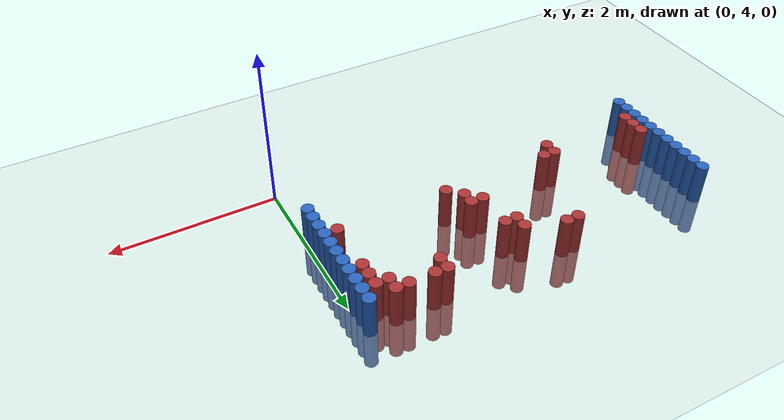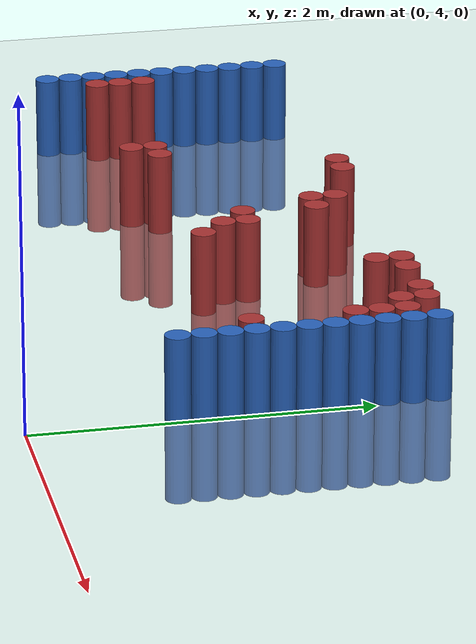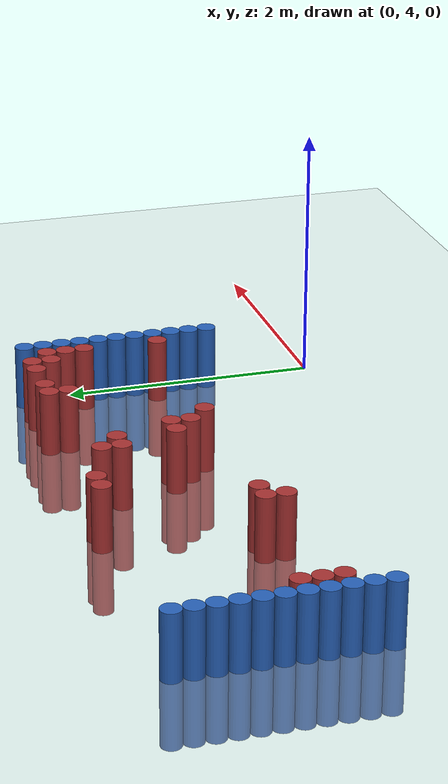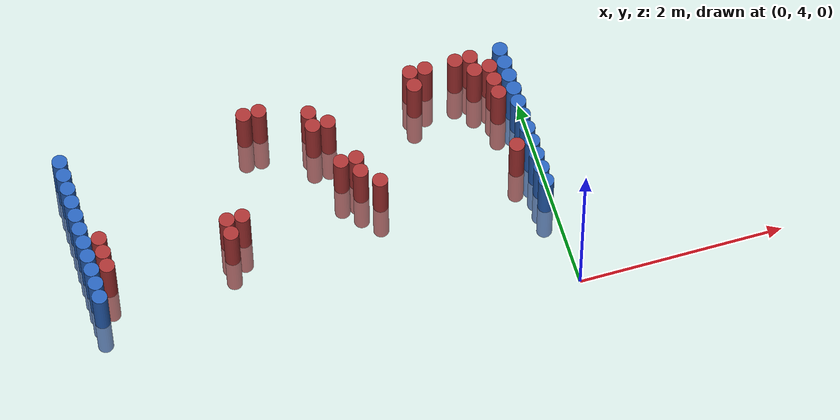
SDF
<sdf version="1.6">
 <world name="default">
  <model name="ground_plane">
   <static>1</static>
   <link name="link">
    <collision name="collision">
     <geometry><plane><normal>0 0 1</normal><size>100 100</size></plane></geometry>
     <surface><friction><ode><mu>100</mu><mu2>50</mu2></ode></friction></surface>
    </collision>
    <visual name="visual">
     <cast_shadows>0</cast_shadows>
     <geometry><plane><normal>0 0 1</normal><size>100 100</size></plane></geometry>
     <material>
      <script><uri>file://media/materials/scripts/gazebo.material</uri><name>Gazebo/Grey</name></script>
     </material>
    </visual>
   </link>
  </model>
  <model name="unit_cylinder_92">
   <static>1</static>
   <pose>-0.075000 4.875000 0.000000 0.000000 0.000000 0.000000</pose>
   <link name="link">
    <inertial>
     <mass>1</mass>
     <inertia><ixx>0.145833</ixx><ixy>0</ixy><ixz>0</ixz><iyy>0.145833</iyy><iyz>0</iyz><izz>0.125</izz></inertia>
    </inertial>
    <collision name="collision">
     <geometry><cylinder><radius>0.075000</radius><length>1</length></cylinder></geometry>
    </collision>
    <visual name="visual">
     <geometry><cylinder><radius>0.075000</radius><length>1</length></cylinder></geometry>
     <material>
      <ambient>0.152000 0.379000 0.720000 1</ambient>
      <diffuse>0.152000 0.379000 0.720000 1</diffuse>
     </material>
     <material>
      <script><name>Gazebo/Grey</name><uri>file://media/materials/scripts/gazebo.material</uri></script>
     </material>
    </visual>
   </link>
  </model>
  <model name="unit_cylinder_93">
   <static>1</static>
   <pose>-4.425000 4.875000 0.000000 0.000000 0.000000 0.000000</pose>
   <link name="link">
    <inertial>
     <mass>1</mass>
     <inertia><ixx>0.145833</ixx><ixy>0</ixy><ixz>0</ixz><iyy>0.145833</iyy><iyz>0</iyz><izz>0.125</izz></inertia>
    </inertial>
    <collision name="collision">
     <geometry><cylinder><radius>0.075000</radius><length>1</length></cylinder></geometry>
    </collision>
    <visual name="visual">
     <geometry><cylinder><radius>0.075000</radius><length>1</length></cylinder></geometry>
     <material>
      <ambient>0.152000 0.379000 0.720000 1</ambient>
      <diffuse>0.152000 0.379000 0.720000 1</diffuse>
     </material>
     <material>
      <script><name>Gazebo/Grey</name><uri>file://media/materials/scripts/gazebo.material</uri></script>
     </material>
    </visual>
   </link>
  </model>
  <model name="unit_cylinder_94">
   <static>1</static>
   <pose>-0.075000 5.025000 0.000000 0.000000 0.000000 0.000000</pose>
   <link name="link">
    <inertial>
     <mass>1</mass>
     <inertia><ixx>0.145833</ixx><ixy>0</ixy><ixz>0</ixz><iyy>0.145833</iyy><iyz>0</iyz><izz>0.125</izz></inertia>
    </inertial>
    <collision name="collision">
     <geometry><cylinder><radius>0.075000</radius><length>1</length></cylinder></geometry>
    </collision>
    <visual name="visual">
     <geometry><cylinder><radius>0.075000</radius><length>1</length></cylinder></geometry>
     <material>
      <ambient>0.152000 0.379000 0.720000 1</ambient>
      <diffuse>0.152000 0.379000 0.720000 1</diffuse>
     </material>
     <material>
      <script><name>Gazebo/Grey</name><uri>file://media/materials/scripts/gazebo.material</uri></script>
     </material>
    </visual>
   </link>
  </model>
  <model name="unit_cylinder_95">
   <static>1</static>
   <pose>-4.425000 5.025000 0.000000 0.000000 0.000000 0.000000</pose>
   <link name="link">
    <inertial>
     <mass>1</mass>
     <inertia><ixx>0.145833</ixx><ixy>0</ixy><ixz>0</ixz><iyy>0.145833</iyy><iyz>0</iyz><izz>0.125</izz></inertia>
    </inertial>
    <collision name="collision">
     <geometry><cylinder><radius>0.075000</radius><length>1</length></cylinder></geometry>
    </collision>
    <visual name="visual">
     <geometry><cylinder><radius>0.075000</radius><length>1</length></cylinder></geometry>
     <material>
      <ambient>0.152000 0.379000 0.720000 1</ambient>
      <diffuse>0.152000 0.379000 0.720000 1</diffuse>
     </material>
     <material>
      <script><name>Gazebo/Grey</name><uri>file://media/materials/scripts/gazebo.material</uri></script>
     </material>
    </visual>
   </link>
  </model>
  <model name="unit_cylinder_96">
   <static>1</static>
   <pose>-4.425000 5.175000 0.000000 0.000000 0.000000 0.000000</pose>
   <link name="link">
    <inertial>
     <mass>1</mass>
     <inertia><ixx>0.145833</ixx><ixy>0</ixy><ixz>0</ixz><iyy>0.145833</iyy><iyz>0</iyz><izz>0.125</izz></inertia>
    </inertial>
    <collision name="collision">
     <geometry><cylinder><radius>0.075000</radius><length>1</length></cylinder></geometry>
    </collision>
    <visual name="visual">
     <geometry><cylinder><radius>0.075000</radius><length>1</length></cylinder></geometry>
     <material>
      <ambient>0.152000 0.379000 0.720000 1</ambient>
      <diffuse>0.152000 0.379000 0.720000 1</diffuse>
     </material>
     <material>
      <script><name>Gazebo/Grey</name><uri>file://media/materials/scripts/gazebo.material</uri></script>
     </material>
    </visual>
   </link>
  </model>
  <model name="unit_cylinder_97">
   <static>1</static>
   <pose>-4.425000 5.325000 0.000000 0.000000 0.000000 0.000000</pose>
   <link name="link">
    <inertial>
     <mass>1</mass>
     <inertia><ixx>0.145833</ixx><ixy>0</ixy><ixz>0</ixz><iyy>0.145833</iyy><iyz>0</iyz><izz>0.125</izz></inertia>
    </inertial>
    <collision name="collision">
     <geometry><cylinder><radius>0.075000</radius><length>1</length></cylinder></geometry>
    </collision>
    <visual name="visual">
     <geometry><cylinder><radius>0.075000</radius><length>1</length></cylinder></geometry>
     <material>
      <ambient>0.152000 0.379000 0.720000 1</ambient>
      <diffuse>0.152000 0.379000 0.720000 1</diffuse>
     </material>
     <material>
      <script><name>Gazebo/Grey</name><uri>file://media/materials/scripts/gazebo.material</uri></script>
     </material>
    </visual>
   </link>
  </model>
  <model name="unit_cylinder_98">
   <static>1</static>
   <pose>-4.425000 5.475000 0.000000 0.000000 0.000000 0.000000</pose>
   <link name="link">
    <inertial>
     <mass>1</mass>
     <inertia><ixx>0.145833</ixx><ixy>0</ixy><ixz>0</ixz><iyy>0.145833</iyy><iyz>0</iyz><izz>0.125</izz></inertia>
    </inertial>
    <collision name="collision">
     <geometry><cylinder><radius>0.075000</radius><length>1</length></cylinder></geometry>
    </collision>
    <visual name="visual">
     <geometry><cylinder><radius>0.075000</radius><length>1</length></cylinder></geometry>
     <material>
      <ambient>0.152000 0.379000 0.720000 1</ambient>
      <diffuse>0.152000 0.379000 0.720000 1</diffuse>
     </material>
     <material>
      <script><name>Gazebo/Grey</name><uri>file://media/materials/scripts/gazebo.material</uri></script>
     </material>
    </visual>
   </link>
  </model>
  <model name="unit_cylinder_99">
   <static>1</static>
   <pose>-4.425000 5.625000 0.000000 0.000000 0.000000 0.000000</pose>
   <link name="link">
    <inertial>
     <mass>1</mass>
     <inertia><ixx>0.145833</ixx><ixy>0</ixy><ixz>0</ixz><iyy>0.145833</iyy><iyz>0</iyz><izz>0.125</izz></inertia>
    </inertial>
    <collision name="collision">
     <geometry><cylinder><radius>0.075000</radius><length>1</length></cylinder></geometry>
    </collision>
    <visual name="visual">
     <geometry><cylinder><radius>0.075000</radius><length>1</length></cylinder></geometry>
     <material>
      <ambient>0.152000 0.379000 0.720000 1</ambient>
      <diffuse>0.152000 0.379000 0.720000 1</diffuse>
     </material>
     <material>
      <script><name>Gazebo/Grey</name><uri>file://media/materials/scripts/gazebo.material</uri></script>
     </material>
    </visual>
   </link>
  </model>
  <model name="unit_cylinder_100">
   <static>1</static>
   <pose>-4.425000 5.775000 0.000000 0.000000 0.000000 0.000000</pose>
   <link name="link">
    <inertial>
     <mass>1</mass>
     <inertia><ixx>0.145833</ixx><ixy>0</ixy><ixz>0</ixz><iyy>0.145833</iyy><iyz>0</iyz><izz>0.125</izz></inertia>
    </inertial>
    <collision name="collision">
     <geometry><cylinder><radius>0.075000</radius><length>1</length></cylinder></geometry>
    </collision>
    <visual name="visual">
     <geometry><cylinder><radius>0.075000</radius><length>1</length></cylinder></geometry>
     <material>
      <ambient>0.152000 0.379000 0.720000 1</ambient>
      <diffuse>0.152000 0.379000 0.720000 1</diffuse>
     </material>
     <material>
      <script><name>Gazebo/Grey</name><uri>file://media/materials/scripts/gazebo.material</uri></script>
     </material>
    </visual>
   </link>
  </model>
  <model name="unit_cylinder_101">
   <static>1</static>
   <pose>-4.425000 5.925000 0.000000 0.000000 0.000000 0.000000</pose>
   <link name="link">
    <inertial>
     <mass>1</mass>
     <inertia><ixx>0.145833</ixx><ixy>0</ixy><ixz>0</ixz><iyy>0.145833</iyy><iyz>0</iyz><izz>0.125</izz></inertia>
    </inertial>
    <collision name="collision">
     <geometry><cylinder><radius>0.075000</radius><length>1</length></cylinder></geometry>
    </collision>
    <visual name="visual">
     <geometry><cylinder><radius>0.075000</radius><length>1</length></cylinder></geometry>
     <material>
      <ambient>0.152000 0.379000 0.720000 1</ambient>
      <diffuse>0.152000 0.379000 0.720000 1</diffuse>
     </material>
     <material>
      <script><name>Gazebo/Grey</name><uri>file://media/materials/scripts/gazebo.material</uri></script>
     </material>
    </visual>
   </link>
  </model>
  <model name="unit_cylinder_102">
   <static>1</static>
   <pose>-4.425000 6.075000 0.000000 0.000000 0.000000 0.000000</pose>
   <link name="link">
    <inertial>
     <mass>1</mass>
     <inertia><ixx>0.145833</ixx><ixy>0</ixy><ixz>0</ixz><iyy>0.145833</iyy><iyz>0</iyz><izz>0.125</izz></inertia>
    </inertial>
    <collision name="collision">
     <geometry><cylinder><radius>0.075000</radius><length>1</length></cylinder></geometry>
    </collision>
    <visual name="visual">
     <geometry><cylinder><radius>0.075000</radius><length>1</length></cylinder></geometry>
     <material>
      <ambient>0.152000 0.379000 0.720000 1</ambient>
      <diffuse>0.152000 0.379000 0.720000 1</diffuse>
     </material>
     <material>
      <script><name>Gazebo/Grey</name><uri>file://media/materials/scripts/gazebo.material</uri></script>
     </material>
    </visual>
   </link>
  </model>
  <model name="unit_cylinder_103">
   <static>1</static>
   <pose>-4.425000 6.225000 0.000000 0.000000 0.000000 0.000000</pose>
   <link name="link">
    <inertial>
     <mass>1</mass>
     <inertia><ixx>0.145833</ixx><ixy>0</ixy><ixz>0</ixz><iyy>0.145833</iyy><iyz>0</iyz><izz>0.125</izz></inertia>
    </inertial>
    <collision name="collision">
     <geometry><cylinder><radius>0.075000</radius><length>1</length></cylinder></geometry>
    </collision>
    <visual name="visual">
     <geometry><cylinder><radius>0.075000</radius><length>1</length></cylinder></geometry>
     <material>
      <ambient>0.152000 0.379000 0.720000 1</ambient>
      <diffuse>0.152000 0.379000 0.720000 1</diffuse>
     </material>
     <material>
      <script><name>Gazebo/Grey</name><uri>file://media/materials/scripts/gazebo.material</uri></script>
     </material>
    </visual>
   </link>
  </model>
  <model name="unit_cylinder_104">
   <static>1</static>
   <pose>-4.425000 6.375000 0.000000 0.000000 0.000000 0.000000</pose>
   <link name="link">
    <inertial>
     <mass>1</mass>
     <inertia><ixx>0.145833</ixx><ixy>0</ixy><ixz>0</ixz><iyy>0.145833</iyy><iyz>0</iyz><izz>0.125</izz></inertia>
    </inertial>
    <collision name="collision">
     <geometry><cylinder><radius>0.075000</radius><length>1</length></cylinder></geometry>
    </collision>
    <visual name="visual">
     <geometry><cylinder><radius>0.075000</radius><length>1</length></cylinder></geometry>
     <material>
      <ambient>0.152000 0.379000 0.720000 1</ambient>
      <diffuse>0.152000 0.379000 0.720000 1</diffuse>
     </material>
     <material>
      <script><name>Gazebo/Grey</name><uri>file://media/materials/scripts/gazebo.material</uri></script>
     </material>
    </visual>
   </link>
  </model>
  <model name="unit_cylinder_126">
   <static>1</static>
   <pose>-4.275000 5.175000 0.000000 0.000000 0.000000 0.000000</pose>
   <link name="link">
    <inertial>
     <mass>1</mass>
     <inertia><ixx>0.145833</ixx><ixy>0</ixy><ixz>0</ixz><iyy>0.145833</iyy><iyz>0</iyz><izz>0.125</izz></inertia>
    </inertial>
    <collision name="collision">
     <geometry><cylinder><radius>0.075000</radius><length>1</length></cylinder></geometry>
    </collision>
    <visual name="visual">
     <geometry><cylinder><radius>0.075000</radius><length>1</length></cylinder></geometry>
     <material>
      <ambient>0.648000 0.192000 0.192000 1</ambient>
      <diffuse>0.648000 0.192000 0.192000 1</diffuse>
     </material>
     <material>
      <script><name>Gazebo/Grey</name><uri>file://media/materials/scripts/gazebo.material</uri></script>
     </material>
    </visual>
   </link>
  </model>
  <model name="unit_cylinder_127">
   <static>1</static>
   <pose>-4.275000 5.325000 0.000000 0.000000 0.000000 0.000000</pose>
   <link name="link">
    <inertial>
     <mass>1</mass>
     <inertia><ixx>0.145833</ixx><ixy>0</ixy><ixz>0</ixz><iyy>0.145833</iyy><iyz>0</iyz><izz>0.125</izz></inertia>
    </inertial>
    <collision name="collision">
     <geometry><cylinder><radius>0.075000</radius><length>1</length></cylinder></geometry>
    </collision>
    <visual name="visual">
     <geometry><cylinder><radius>0.075000</radius><length>1</length></cylinder></geometry>
     <material>
      <ambient>0.648000 0.192000 0.192000 1</ambient>
      <diffuse>0.648000 0.192000 0.192000 1</diffuse>
     </material>
     <material>
      <script><name>Gazebo/Grey</name><uri>file://media/materials/scripts/gazebo.material</uri></script>
     </material>
    </visual>
   </link>
  </model>
  <model name="unit_cylinder_128">
   <static>1</static>
   <pose>-4.275000 5.475000 0.000000 0.000000 0.000000 0.000000</pose>
   <link name="link">
    <inertial>
     <mass>1</mass>
     <inertia><ixx>0.145833</ixx><ixy>0</ixy><ixz>0</ixz><iyy>0.145833</iyy><iyz>0</iyz><izz>0.125</izz></inertia>
    </inertial>
    <collision name="collision">
     <geometry><cylinder><radius>0.075000</radius><length>1</length></cylinder></geometry>
    </collision>
    <visual name="visual">
     <geometry><cylinder><radius>0.075000</radius><length>1</length></cylinder></geometry>
     <material>
      <ambient>0.648000 0.192000 0.192000 1</ambient>
      <diffuse>0.648000 0.192000 0.192000 1</diffuse>
     </material>
     <material>
      <script><name>Gazebo/Grey</name><uri>file://media/materials/scripts/gazebo.material</uri></script>
     </material>
    </visual>
   </link>
  </model>
  <model name="unit_cylinder_148">
   <static>1</static>
   <pose>-3.075000 5.175000 0.000000 0.000000 0.000000 0.000000</pose>
   <link name="link">
    <inertial>
     <mass>1</mass>
     <inertia><ixx>0.145833</ixx><ixy>0</ixy><ixz>0</ixz><iyy>0.145833</iyy><iyz>0</iyz><izz>0.125</izz></inertia>
    </inertial>
    <collision name="collision">
     <geometry><cylinder><radius>0.075000</radius><length>1</length></cylinder></geometry>
    </collision>
    <visual name="visual">
     <geometry><cylinder><radius>0.075000</radius><length>1</length></cylinder></geometry>
     <material>
      <ambient>0.648000 0.192000 0.192000 1</ambient>
      <diffuse>0.648000 0.192000 0.192000 1</diffuse>
     </material>
     <material>
      <script><name>Gazebo/Grey</name><uri>file://media/materials/scripts/gazebo.material</uri></script>
     </material>
    </visual>
   </link>
  </model>
  <model name="unit_cylinder_149">
   <static>1</static>
   <pose>-3.075000 5.325000 0.000000 0.000000 0.000000 0.000000</pose>
   <link name="link">
    <inertial>
     <mass>1</mass>
     <inertia><ixx>0.145833</ixx><ixy>0</ixy><ixz>0</ixz><iyy>0.145833</iyy><iyz>0</iyz><izz>0.125</izz></inertia>
    </inertial>
    <collision name="collision">
     <geometry><cylinder><radius>0.075000</radius><length>1</length></cylinder></geometry>
    </collision>
    <visual name="visual">
     <geometry><cylinder><radius>0.075000</radius><length>1</length></cylinder></geometry>
     <material>
      <ambient>0.648000 0.192000 0.192000 1</ambient>
      <diffuse>0.648000 0.192000 0.192000 1</diffuse>
     </material>
     <material>
      <script><name>Gazebo/Grey</name><uri>file://media/materials/scripts/gazebo.material</uri></script>
     </material>
    </visual>
   </link>
  </model>
  <model name="unit_cylinder_153">
   <static>1</static>
   <pose>-2.925000 5.325000 0.000000 0.000000 0.000000 0.000000</pose>
   <link name="link">
    <inertial>
     <mass>1</mass>
     <inertia><ixx>0.145833</ixx><ixy>0</ixy><ixz>0</ixz><iyy>0.145833</iyy><iyz>0</iyz><izz>0.125</izz></inertia>
    </inertial>
    <collision name="collision">
     <geometry><cylinder><radius>0.075000</radius><length>1</length></cylinder></geometry>
    </collision>
    <visual name="visual">
     <geometry><cylinder><radius>0.075000</radius><length>1</length></cylinder></geometry>
     <material>
      <ambient>0.648000 0.192000 0.192000 1</ambient>
      <diffuse>0.648000 0.192000 0.192000 1</diffuse>
     </material>
     <material>
      <script><name>Gazebo/Grey</name><uri>file://media/materials/scripts/gazebo.material</uri></script>
     </material>
    </visual>
   </link>
  </model>
  <model name="unit_cylinder_155">
   <static>1</static>
   <pose>-2.625000 6.375000 0.000000 0.000000 0.000000 0.000000</pose>
   <link name="link">
    <inertial>
     <mass>1</mass>
     <inertia><ixx>0.145833</ixx><ixy>0</ixy><ixz>0</ixz><iyy>0.145833</iyy><iyz>0</iyz><izz>0.125</izz></inertia>
    </inertial>
    <collision name="collision">
     <geometry><cylinder><radius>0.075000</radius><length>1</length></cylinder></geometry>
    </collision>
    <visual name="visual">
     <geometry><cylinder><radius>0.075000</radius><length>1</length></cylinder></geometry>
     <material>
      <ambient>0.648000 0.192000 0.192000 1</ambient>
      <diffuse>0.648000 0.192000 0.192000 1</diffuse>
     </material>
     <material>
      <script><name>Gazebo/Grey</name><uri>file://media/materials/scripts/gazebo.material</uri></script>
     </material>
    </visual>
   </link>
  </model>
  <model name="unit_cylinder_157">
   <static>1</static>
   <pose>-2.475000 6.375000 0.000000 0.000000 0.000000 0.000000</pose>
   <link name="link">
    <inertial>
     <mass>1</mass>
     <inertia><ixx>0.145833</ixx><ixy>0</ixy><ixz>0</ixz><iyy>0.145833</iyy><iyz>0</iyz><izz>0.125</izz></inertia>
    </inertial>
    <collision name="collision">
     <geometry><cylinder><radius>0.075000</radius><length>1</length></cylinder></geometry>
    </collision>
    <visual name="visual">
     <geometry><cylinder><radius>0.075000</radius><length>1</length></cylinder></geometry>
     <material>
      <ambient>0.648000 0.192000 0.192000 1</ambient>
      <diffuse>0.648000 0.192000 0.192000 1</diffuse>
     </material>
     <material>
      <script><name>Gazebo/Grey</name><uri>file://media/materials/scripts/gazebo.material</uri></script>
     </material>
    </visual>
   </link>
  </model>
  <model name="unit_cylinder_161">
   <static>1</static>
   <pose>-2.025000 6.075000 0.000000 0.000000 0.000000 0.000000</pose>
   <link name="link">
    <inertial>
     <mass>1</mass>
     <inertia><ixx>0.145833</ixx><ixy>0</ixy><ixz>0</ixz><iyy>0.145833</iyy><iyz>0</iyz><izz>0.125</izz></inertia>
    </inertial>
    <collision name="collision">
     <geometry><cylinder><radius>0.075000</radius><length>1</length></cylinder></geometry>
    </collision>
    <visual name="visual">
     <geometry><cylinder><radius>0.075000</radius><length>1</length></cylinder></geometry>
     <material>
      <ambient>0.648000 0.192000 0.192000 1</ambient>
      <diffuse>0.648000 0.192000 0.192000 1</diffuse>
     </material>
     <material>
      <script><name>Gazebo/Grey</name><uri>file://media/materials/scripts/gazebo.material</uri></script>
     </material>
    </visual>
   </link>
  </model>
  <model name="unit_cylinder_162">
   <static>1</static>
   <pose>-2.025000 6.225000 0.000000 0.000000 0.000000 0.000000</pose>
   <link name="link">
    <inertial>
     <mass>1</mass>
     <inertia><ixx>0.145833</ixx><ixy>0</ixy><ixz>0</ixz><iyy>0.145833</iyy><iyz>0</iyz><izz>0.125</izz></inertia>
    </inertial>
    <collision name="collision">
     <geometry><cylinder><radius>0.075000</radius><length>1</length></cylinder></geometry>
    </collision>
    <visual name="visual">
     <geometry><cylinder><radius>0.075000</radius><length>1</length></cylinder></geometry>
     <material>
      <ambient>0.648000 0.192000 0.192000 1</ambient>
      <diffuse>0.648000 0.192000 0.192000 1</diffuse>
     </material>
     <material>
      <script><name>Gazebo/Grey</name><uri>file://media/materials/scripts/gazebo.material</uri></script>
     </material>
    </visual>
   </link>
  </model>
  <model name="unit_cylinder_163">
   <static>1</static>
   <pose>-1.875000 5.625000 0.000000 0.000000 0.000000 0.000000</pose>
   <link name="link">
    <inertial>
     <mass>1</mass>
     <inertia><ixx>0.145833</ixx><ixy>0</ixy><ixz>0</ixz><iyy>0.145833</iyy><iyz>0</iyz><izz>0.125</izz></inertia>
    </inertial>
    <collision name="collision">
     <geometry><cylinder><radius>0.075000</radius><length>1</length></cylinder></geometry>
    </collision>
    <visual name="visual">
     <geometry><cylinder><radius>0.075000</radius><length>1</length></cylinder></geometry>
     <material>
      <ambient>0.648000 0.192000 0.192000 1</ambient>
      <diffuse>0.648000 0.192000 0.192000 1</diffuse>
     </material>
     <material>
      <script><name>Gazebo/Grey</name><uri>file://media/materials/scripts/gazebo.material</uri></script>
     </material>
    </visual>
   </link>
  </model>
  <model name="unit_cylinder_164">
   <static>1</static>
   <pose>-1.875000 6.075000 0.000000 0.000000 0.000000 0.000000</pose>
   <link name="link">
    <inertial>
     <mass>1</mass>
     <inertia><ixx>0.145833</ixx><ixy>0</ixy><ixz>0</ixz><iyy>0.145833</iyy><iyz>0</iyz><izz>0.125</izz></inertia>
    </inertial>
    <collision name="collision">
     <geometry><cylinder><radius>0.075000</radius><length>1</length></cylinder></geometry>
    </collision>
    <visual name="visual">
     <geometry><cylinder><radius>0.075000</radius><length>1</length></cylinder></geometry>
     <material>
      <ambient>0.648000 0.192000 0.192000 1</ambient>
      <diffuse>0.648000 0.192000 0.192000 1</diffuse>
     </material>
     <material>
      <script><name>Gazebo/Grey</name><uri>file://media/materials/scripts/gazebo.material</uri></script>
     </material>
    </visual>
   </link>
  </model>
  <model name="unit_cylinder_165">
   <static>1</static>
   <pose>-1.725000 5.475000 0.000000 0.000000 0.000000 0.000000</pose>
   <link name="link">
    <inertial>
     <mass>1</mass>
     <inertia><ixx>0.145833</ixx><ixy>0</ixy><ixz>0</ixz><iyy>0.145833</iyy><iyz>0</iyz><izz>0.125</izz></inertia>
    </inertial>
    <collision name="collision">
     <geometry><cylinder><radius>0.075000</radius><length>1</length></cylinder></geometry>
    </collision>
    <visual name="visual">
     <geometry><cylinder><radius>0.075000</radius><length>1</length></cylinder></geometry>
     <material>
      <ambient>0.648000 0.192000 0.192000 1</ambient>
      <diffuse>0.648000 0.192000 0.192000 1</diffuse>
     </material>
     <material>
      <script><name>Gazebo/Grey</name><uri>file://media/materials/scripts/gazebo.material</uri></script>
     </material>
    </visual>
   </link>
  </model>
  <model name="unit_cylinder_166">
   <static>1</static>
   <pose>-1.725000 5.625000 0.000000 0.000000 0.000000 0.000000</pose>
   <link name="link">
    <inertial>
     <mass>1</mass>
     <inertia><ixx>0.145833</ixx><ixy>0</ixy><ixz>0</ixz><iyy>0.145833</iyy><iyz>0</iyz><izz>0.125</izz></inertia>
    </inertial>
    <collision name="collision">
     <geometry><cylinder><radius>0.075000</radius><length>1</length></cylinder></geometry>
    </collision>
    <visual name="visual">
     <geometry><cylinder><radius>0.075000</radius><length>1</length></cylinder></geometry>
     <material>
      <ambient>0.648000 0.192000 0.192000 1</ambient>
      <diffuse>0.648000 0.192000 0.192000 1</diffuse>
     </material>
     <material>
      <script><name>Gazebo/Grey</name><uri>file://media/materials/scripts/gazebo.material</uri></script>
     </material>
    </visual>
   </link>
  </model>
  <model name="unit_cylinder_169">
   <static>1</static>
   <pose>-1.575000 5.325000 0.000000 0.000000 0.000000 0.000000</pose>
   <link name="link">
    <inertial>
     <mass>1</mass>
     <inertia><ixx>0.145833</ixx><ixy>0</ixy><ixz>0</ixz><iyy>0.145833</iyy><iyz>0</iyz><izz>0.125</izz></inertia>
    </inertial>
    <collision name="collision">
     <geometry><cylinder><radius>0.075000</radius><length>1</length></cylinder></geometry>
    </collision>
    <visual name="visual">
     <geometry><cylinder><radius>0.075000</radius><length>1</length></cylinder></geometry>
     <material>
      <ambient>0.648000 0.192000 0.192000 1</ambient>
      <diffuse>0.648000 0.192000 0.192000 1</diffuse>
     </material>
     <material>
      <script><name>Gazebo/Grey</name><uri>file://media/materials/scripts/gazebo.material</uri></script>
     </material>
    </visual>
   </link>
  </model>
  <model name="unit_cylinder_173">
   <static>1</static>
   <pose>-0.975000 6.225000 0.000000 0.000000 0.000000 0.000000</pose>
   <link name="link">
    <inertial>
     <mass>1</mass>
     <inertia><ixx>0.145833</ixx><ixy>0</ixy><ixz>0</ixz><iyy>0.145833</iyy><iyz>0</iyz><izz>0.125</izz></inertia>
    </inertial>
    <collision name="collision">
     <geometry><cylinder><radius>0.075000</radius><length>1</length></cylinder></geometry>
    </collision>
    <visual name="visual">
     <geometry><cylinder><radius>0.075000</radius><length>1</length></cylinder></geometry>
     <material>
      <ambient>0.648000 0.192000 0.192000 1</ambient>
      <diffuse>0.648000 0.192000 0.192000 1</diffuse>
     </material>
     <material>
      <script><name>Gazebo/Grey</name><uri>file://media/materials/scripts/gazebo.material</uri></script>
     </material>
    </visual>
   </link>
  </model>
  <model name="unit_cylinder_174">
   <static>1</static>
   <pose>-0.975000 6.375000 0.000000 0.000000 0.000000 0.000000</pose>
   <link name="link">
    <inertial>
     <mass>1</mass>
     <inertia><ixx>0.145833</ixx><ixy>0</ixy><ixz>0</ixz><iyy>0.145833</iyy><iyz>0</iyz><izz>0.125</izz></inertia>
    </inertial>
    <collision name="collision">
     <geometry><cylinder><radius>0.075000</radius><length>1</length></cylinder></geometry>
    </collision>
    <visual name="visual">
     <geometry><cylinder><radius>0.075000</radius><length>1</length></cylinder></geometry>
     <material>
      <ambient>0.648000 0.192000 0.192000 1</ambient>
      <diffuse>0.648000 0.192000 0.192000 1</diffuse>
     </material>
     <material>
      <script><name>Gazebo/Grey</name><uri>file://media/materials/scripts/gazebo.material</uri></script>
     </material>
    </visual>
   </link>
  </model>
  <model name="unit_cylinder_178">
   <static>1</static>
   <pose>-0.825000 6.375000 0.000000 0.000000 0.000000 0.000000</pose>
   <link name="link">
    <inertial>
     <mass>1</mass>
     <inertia><ixx>0.145833</ixx><ixy>0</ixy><ixz>0</ixz><iyy>0.145833</iyy><iyz>0</iyz><izz>0.125</izz></inertia>
    </inertial>
    <collision name="collision">
     <geometry><cylinder><radius>0.075000</radius><length>1</length></cylinder></geometry>
    </collision>
    <visual name="visual">
     <geometry><cylinder><radius>0.075000</radius><length>1</length></cylinder></geometry>
     <material>
      <ambient>0.648000 0.192000 0.192000 1</ambient>
      <diffuse>0.648000 0.192000 0.192000 1</diffuse>
     </material>
     <material>
      <script><name>Gazebo/Grey</name><uri>file://media/materials/scripts/gazebo.material</uri></script>
     </material>
    </visual>
   </link>
  </model>
  <model name="unit_cylinder_181">
   <static>1</static>
   <pose>-0.525000 6.375000 0.000000 0.000000 0.000000 0.000000</pose>
   <link name="link">
    <inertial>
     <mass>1</mass>
     <inertia><ixx>0.145833</ixx><ixy>0</ixy><ixz>0</ixz><iyy>0.145833</iyy><iyz>0</iyz><izz>0.125</izz></inertia>
    </inertial>
    <collision name="collision">
     <geometry><cylinder><radius>0.075000</radius><length>1</length></cylinder></geometry>
    </collision>
    <visual name="visual">
     <geometry><cylinder><radius>0.075000</radius><length>1</length></cylinder></geometry>
     <material>
      <ambient>0.648000 0.192000 0.192000 1</ambient>
      <diffuse>0.648000 0.192000 0.192000 1</diffuse>
     </material>
     <material>
      <script><name>Gazebo/Grey</name><uri>file://media/materials/scripts/gazebo.material</uri></script>
     </material>
    </visual>
   </link>
  </model>
  <model name="unit_cylinder_183">
   <static>1</static>
   <pose>-0.375000 6.225000 0.000000 0.000000 0.000000 0.000000</pose>
   <link name="link">
    <inertial>
     <mass>1</mass>
     <inertia><ixx>0.145833</ixx><ixy>0</ixy><ixz>0</ixz><iyy>0.145833</iyy><iyz>0</iyz><izz>0.125</izz></inertia>
    </inertial>
    <collision name="collision">
     <geometry><cylinder><radius>0.075000</radius><length>1</length></cylinder></geometry>
    </collision>
    <visual name="visual">
     <geometry><cylinder><radius>0.075000</radius><length>1</length></cylinder></geometry>
     <material>
      <ambient>0.648000 0.192000 0.192000 1</ambient>
      <diffuse>0.648000 0.192000 0.192000 1</diffuse>
     </material>
     <material>
      <script><name>Gazebo/Grey</name><uri>file://media/materials/scripts/gazebo.material</uri></script>
     </material>
    </visual>
   </link>
  </model>
  <model name="unit_cylinder_184">
   <static>1</static>
   <pose>-0.375000 6.375000 0.000000 0.000000 0.000000 0.000000</pose>
   <link name="link">
    <inertial>
     <mass>1</mass>
     <inertia><ixx>0.145833</ixx><ixy>0</ixy><ixz>0</ixz><iyy>0.145833</iyy><iyz>0</iyz><izz>0.125</izz></inertia>
    </inertial>
    <collision name="collision">
     <geometry><cylinder><radius>0.075000</radius><length>1</length></cylinder></geometry>
    </collision>
    <visual name="visual">
     <geometry><cylinder><radius>0.075000</radius><length>1</length></cylinder></geometry>
     <material>
      <ambient>0.648000 0.192000 0.192000 1</ambient>
      <diffuse>0.648000 0.192000 0.192000 1</diffuse>
     </material>
     <material>
      <script><name>Gazebo/Grey</name><uri>file://media/materials/scripts/gazebo.material</uri></script>
     </material>
    </visual>
   </link>
  </model>
  <model name="unit_cylinder_188">
   <static>1</static>
   <pose>-0.225000 5.325000 0.000000 0.000000 0.000000 0.000000</pose>
   <link name="link">
    <inertial>
     <mass>1</mass>
     <inertia><ixx>0.145833</ixx><ixy>0</ixy><ixz>0</ixz><iyy>0.145833</iyy><iyz>0</iyz><izz>0.125</izz></inertia>
    </inertial>
    <collision name="collision">
     <geometry><cylinder><radius>0.075000</radius><length>1</length></cylinder></geometry>
    </collision>
    <visual name="visual">
     <geometry><cylinder><radius>0.075000</radius><length>1</length></cylinder></geometry>
     <material>
      <ambient>0.648000 0.192000 0.192000 1</ambient>
      <diffuse>0.648000 0.192000 0.192000 1</diffuse>
     </material>
     <material>
      <script><name>Gazebo/Grey</name><uri>file://media/materials/scripts/gazebo.material</uri></script>
     </material>
    </visual>
   </link>
  </model>
  <model name="unit_cylinder_189">
   <static>1</static>
   <pose>-0.225000 5.925000 0.000000 0.000000 0.000000 0.000000</pose>
   <link name="link">
    <inertial>
     <mass>1</mass>
     <inertia><ixx>0.145833</ixx><ixy>0</ixy><ixz>0</ixz><iyy>0.145833</iyy><iyz>0</iyz><izz>0.125</izz></inertia>
    </inertial>
    <collision name="collision">
     <geometry><cylinder><radius>0.075000</radius><length>1</length></cylinder></geometry>
    </collision>
    <visual name="visual">
     <geometry><cylinder><radius>0.075000</radius><length>1</length></cylinder></geometry>
     <material>
      <ambient>0.648000 0.192000 0.192000 1</ambient>
      <diffuse>0.648000 0.192000 0.192000 1</diffuse>
     </material>
     <material>
      <script><name>Gazebo/Grey</name><uri>file://media/materials/scripts/gazebo.material</uri></script>
     </material>
    </visual>
   </link>
  </model>
  <model name="unit_cylinder_190">
   <static>1</static>
   <pose>-0.225000 6.075000 0.000000 0.000000 0.000000 0.000000</pose>
   <link name="link">
    <inertial>
     <mass>1</mass>
     <inertia><ixx>0.145833</ixx><ixy>0</ixy><ixz>0</ixz><iyy>0.145833</iyy><iyz>0</iyz><izz>0.125</izz></inertia>
    </inertial>
    <collision name="collision">
     <geometry><cylinder><radius>0.075000</radius><length>1</length></cylinder></geometry>
    </collision>
    <visual name="visual">
     <geometry><cylinder><radius>0.075000</radius><length>1</length></cylinder></geometry>
     <material>
      <ambient>0.648000 0.192000 0.192000 1</ambient>
      <diffuse>0.648000 0.192000 0.192000 1</diffuse>
     </material>
     <material>
      <script><name>Gazebo/Grey</name><uri>file://media/materials/scripts/gazebo.material</uri></script>
     </material>
    </visual>
   </link>
  </model>
  <model name="unit_cylinder_191">
   <static>1</static>
   <pose>-0.225000 6.225000 0.000000 0.000000 0.000000 0.000000</pose>
   <link name="link">
    <inertial>
     <mass>1</mass>
     <inertia><ixx>0.145833</ixx><ixy>0</ixy><ixz>0</ixz><iyy>0.145833</iyy><iyz>0</iyz><izz>0.125</izz></inertia>
    </inertial>
    <collision name="collision">
     <geometry><cylinder><radius>0.075000</radius><length>1</length></cylinder></geometry>
    </collision>
    <visual name="visual">
     <geometry><cylinder><radius>0.075000</radius><length>1</length></cylinder></geometry>
     <material>
      <ambient>0.648000 0.192000 0.192000 1</ambient>
      <diffuse>0.648000 0.192000 0.192000 1</diffuse>
     </material>
     <material>
      <script><name>Gazebo/Grey</name><uri>file://media/materials/scripts/gazebo.material</uri></script>
     </material>
    </visual>
   </link>
  </model>
  <model name="unit_cylinder_202">
   <static>1</static>
   <pose>-0.075000 5.175000 0.000000 0.000000 0.000000 0.000000</pose>
   <link name="link">
    <inertial>
     <mass>1</mass>
     <inertia><ixx>0.145833</ixx><ixy>0</ixy><ixz>0</ixz><iyy>0.145833</iyy><iyz>0</iyz><izz>0.125</izz></inertia>
    </inertial>
    <collision name="collision">
     <geometry><cylinder><radius>0.075000</radius><length>1</length></cylinder></geometry>
    </collision>
    <visual name="visual">
     <geometry><cylinder><radius>0.075000</radius><length>1</length></cylinder></geometry>
     <material>
      <ambient>0.152000 0.379000 0.720000 1</ambient>
      <diffuse>0.152000 0.379000 0.720000 1</diffuse>
     </material>
     <material>
      <script><name>Gazebo/Grey</name><uri>file://media/materials/scripts/gazebo.material</uri></script>
     </material>
    </visual>
   </link>
  </model>
  <model name="unit_cylinder_203">
   <static>1</static>
   <pose>-0.075000 5.325000 0.000000 0.000000 0.000000 0.000000</pose>
   <link name="link">
    <inertial>
     <mass>1</mass>
     <inertia><ixx>0.145833</ixx><ixy>0</ixy><ixz>0</ixz><iyy>0.145833</iyy><iyz>0</iyz><izz>0.125</izz></inertia>
    </inertial>
    <collision name="collision">
     <geometry><cylinder><radius>0.075000</radius><length>1</length></cylinder></geometry>
    </collision>
    <visual name="visual">
     <geometry><cylinder><radius>0.075000</radius><length>1</length></cylinder></geometry>
     <material>
      <ambient>0.152000 0.379000 0.720000 1</ambient>
      <diffuse>0.152000 0.379000 0.720000 1</diffuse>
     </material>
     <material>
      <script><name>Gazebo/Grey</name><uri>file://media/materials/scripts/gazebo.material</uri></script>
     </material>
    </visual>
   </link>
  </model>
  <model name="unit_cylinder_204">
   <static>1</static>
   <pose>-0.075000 5.475000 0.000000 0.000000 0.000000 0.000000</pose>
   <link name="link">
    <inertial>
     <mass>1</mass>
     <inertia><ixx>0.145833</ixx><ixy>0</ixy><ixz>0</ixz><iyy>0.145833</iyy><iyz>0</iyz><izz>0.125</izz></inertia>
    </inertial>
    <collision name="collision">
     <geometry><cylinder><radius>0.075000</radius><length>1</length></cylinder></geometry>
    </collision>
    <visual name="visual">
     <geometry><cylinder><radius>0.075000</radius><length>1</length></cylinder></geometry>
     <material>
      <ambient>0.152000 0.379000 0.720000 1</ambient>
      <diffuse>0.152000 0.379000 0.720000 1</diffuse>
     </material>
     <material>
      <script><name>Gazebo/Grey</name><uri>file://media/materials/scripts/gazebo.material</uri></script>
     </material>
    </visual>
   </link>
  </model>
  <model name="unit_cylinder_205">
   <static>1</static>
   <pose>-0.075000 5.625000 0.000000 0.000000 0.000000 0.000000</pose>
   <link name="link">
    <inertial>
     <mass>1</mass>
     <inertia><ixx>0.145833</ixx><ixy>0</ixy><ixz>0</ixz><iyy>0.145833</iyy><iyz>0</iyz><izz>0.125</izz></inertia>
    </inertial>
    <collision name="collision">
     <geometry><cylinder><radius>0.075000</radius><length>1</length></cylinder></geometry>
    </collision>
    <visual name="visual">
     <geometry><cylinder><radius>0.075000</radius><length>1</length></cylinder></geometry>
     <material>
      <ambient>0.152000 0.379000 0.720000 1</ambient>
      <diffuse>0.152000 0.379000 0.720000 1</diffuse>
     </material>
     <material>
      <script><name>Gazebo/Grey</name><uri>file://media/materials/scripts/gazebo.material</uri></script>
     </material>
    </visual>
   </link>
  </model>
  <model name="unit_cylinder_206">
   <static>1</static>
   <pose>-0.075000 5.775000 0.000000 0.000000 0.000000 0.000000</pose>
   <link name="link">
    <inertial>
     <mass>1</mass>
     <inertia><ixx>0.145833</ixx><ixy>0</ixy><ixz>0</ixz><iyy>0.145833</iyy><iyz>0</iyz><izz>0.125</izz></inertia>
    </inertial>
    <collision name="collision">
     <geometry><cylinder><radius>0.075000</radius><length>1</length></cylinder></geometry>
    </collision>
    <visual name="visual">
     <geometry><cylinder><radius>0.075000</radius><length>1</length></cylinder></geometry>
     <material>
      <ambient>0.152000 0.379000 0.720000 1</ambient>
      <diffuse>0.152000 0.379000 0.720000 1</diffuse>
     </material>
     <material>
      <script><name>Gazebo/Grey</name><uri>file://media/materials/scripts/gazebo.material</uri></script>
     </material>
    </visual>
   </link>
  </model>
  <model name="unit_cylinder_207">
   <static>1</static>
   <pose>-0.075000 5.925000 0.000000 0.000000 0.000000 0.000000</pose>
   <link name="link">
    <inertial>
     <mass>1</mass>
     <inertia><ixx>0.145833</ixx><ixy>0</ixy><ixz>0</ixz><iyy>0.145833</iyy><iyz>0</iyz><izz>0.125</izz></inertia>
    </inertial>
    <collision name="collision">
     <geometry><cylinder><radius>0.075000</radius><length>1</length></cylinder></geometry>
    </collision>
    <visual name="visual">
     <geometry><cylinder><radius>0.075000</radius><length>1</length></cylinder></geometry>
     <material>
      <ambient>0.152000 0.379000 0.720000 1</ambient>
      <diffuse>0.152000 0.379000 0.720000 1</diffuse>
     </material>
     <material>
      <script><name>Gazebo/Grey</name><uri>file://media/materials/scripts/gazebo.material</uri></script>
     </material>
    </visual>
   </link>
  </model>
  <model name="unit_cylinder_208">
   <static>1</static>
   <pose>-0.075000 6.075000 0.000000 0.000000 0.000000 0.000000</pose>
   <link name="link">
    <inertial>
     <mass>1</mass>
     <inertia><ixx>0.145833</ixx><ixy>0</ixy><ixz>0</ixz><iyy>0.145833</iyy><iyz>0</iyz><izz>0.125</izz></inertia>
    </inertial>
    <collision name="collision">
     <geometry><cylinder><radius>0.075000</radius><length>1</length></cylinder></geometry>
    </collision>
    <visual name="visual">
     <geometry><cylinder><radius>0.075000</radius><length>1</length></cylinder></geometry>
     <material>
      <ambient>0.152000 0.379000 0.720000 1</ambient>
      <diffuse>0.152000 0.379000 0.720000 1</diffuse>
     </material>
     <material>
      <script><name>Gazebo/Grey</name><uri>file://media/materials/scripts/gazebo.material</uri></script>
     </material>
    </visual>
   </link>
  </model>
  <model name="unit_cylinder_209">
   <static>1</static>
   <pose>-0.075000 6.225000 0.000000 0.000000 0.000000 0.000000</pose>
   <link name="link">
    <inertial>
     <mass>1</mass>
     <inertia><ixx>0.145833</ixx><ixy>0</ixy><ixz>0</ixz><iyy>0.145833</iyy><iyz>0</iyz><izz>0.125</izz></inertia>
    </inertial>
    <collision name="collision">
     <geometry><cylinder><radius>0.075000</radius><length>1</length></cylinder></geometry>
    </collision>
    <visual name="visual">
     <geometry><cylinder><radius>0.075000</radius><length>1</length></cylinder></geometry>
     <material>
      <ambient>0.152000 0.379000 0.720000 1</ambient>
      <diffuse>0.152000 0.379000 0.720000 1</diffuse>
     </material>
     <material>
      <script><name>Gazebo/Grey</name><uri>file://media/materials/scripts/gazebo.material</uri></script>
     </material>
    </visual>
   </link>
  </model>
  <model name="unit_cylinder_210">
   <static>1</static>
   <pose>-0.075000 6.375000 0.000000 0.000000 0.000000 0.000000</pose>
   <link name="link">
    <inertial>
     <mass>1</mass>
     <inertia><ixx>0.145833</ixx><ixy>0</ixy><ixz>0</ixz><iyy>0.145833</iyy><iyz>0</iyz><izz>0.125</izz></inertia>
    </inertial>
    <collision name="collision">
     <geometry><cylinder><radius>0.075000</radius><length>1</length></cylinder></geometry>
    </collision>
    <visual name="visual">
     <geometry><cylinder><radius>0.075000</radius><length>1</length></cylinder></geometry>
     <material>
      <ambient>0.152000 0.379000 0.720000 1</ambient>
      <diffuse>0.152000 0.379000 0.720000 1</diffuse>
     </material>
     <material>
      <script><name>Gazebo/Grey</name><uri>file://media/materials/scripts/gazebo.material</uri></script>
     </material>
    </visual>
   </link>
  </model>
 </world>
</sdf>
